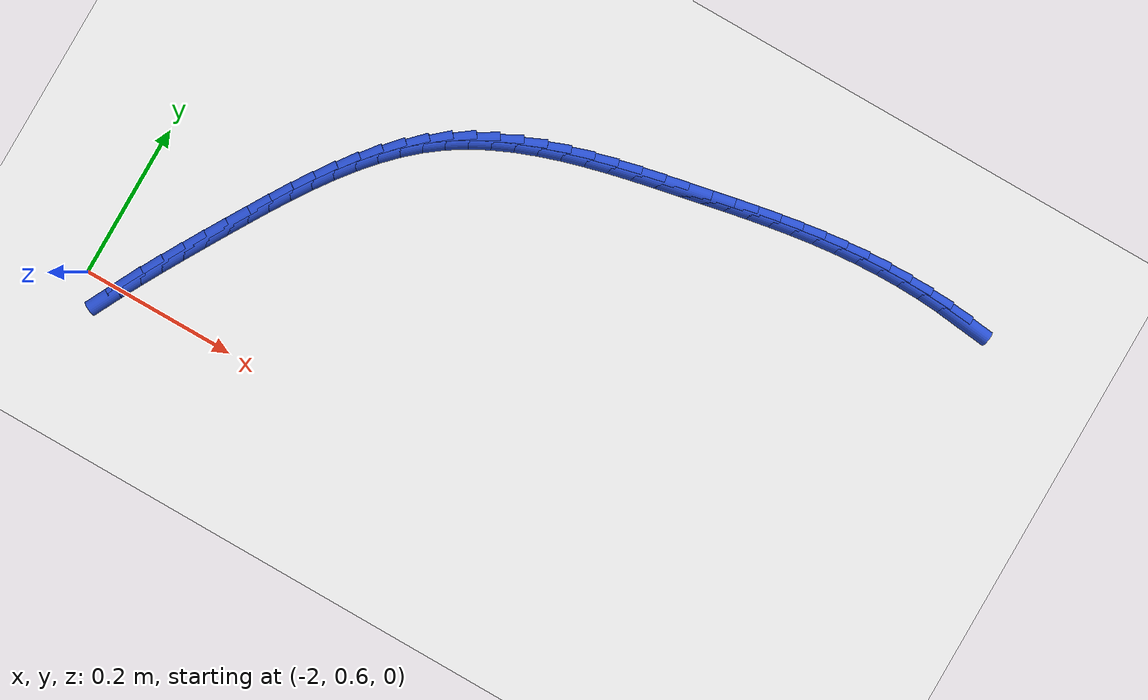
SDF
<sdf version="1.6">
 <world name="default">
  <model name="ground_plane">
   <static>1</static>
   <link name="link">
    <collision name="collision">
     <geometry><plane><normal>0 0 1</normal><size>100 100</size></plane></geometry>
     <surface><friction><ode><mu>100</mu><mu2>50</mu2></ode></friction></surface>
    </collision>
    <visual name="visual">
     <cast_shadows>0</cast_shadows>
     <geometry><plane><normal>0 0 1</normal><size>100 100</size></plane></geometry>
     <material>
      <script><uri>file://media/materials/scripts/gazebo.material</uri><name>Gazebo/WhiteGlow</name></script>
     </material>
    </visual>
   </link>
  </model>
  <model name="line">
   <link name="link_57">
    <pose>-1.0494521160689276 1.0819657733163826 0.01 0 1.57 -0.1118482912921753</pose>
    <collision name="collision">
     <geometry><cylinder><radius>0.01</radius><length>0.08</length></cylinder></geometry>
    </collision>
    <visual name="visual">
     <material>
      <script><name>Gazebo/Blue</name><uri>file://media/materials/scripts/gazebo.material</uri></script>
     </material>
     <geometry><cylinder><radius>0.01</radius><length>0.08</length></cylinder></geometry>
    </visual>
   </link>
   <link name="link_58">
    <pose>-1.0786361252321695 1.0852436350149781 0.01 0 1.57 -0.06854868838956527</pose>
    <collision name="collision">
     <geometry><cylinder><radius>0.01</radius><length>0.08</length></cylinder></geometry>
    </collision>
    <visual name="visual">
     <material>
      <script><name>Gazebo/Blue</name><uri>file://media/materials/scripts/gazebo.material</uri></script>
     </material>
     <geometry><cylinder><radius>0.01</radius><length>0.08</length></cylinder></geometry>
    </visual>
   </link>
   <link name="link_59">
    <pose>-1.1079737981077338 1.0872578498797152 0.01 0 1.57 -0.027786375727203612</pose>
    <collision name="collision">
     <geometry><cylinder><radius>0.01</radius><length>0.08</length></cylinder></geometry>
    </collision>
    <visual name="visual">
     <material>
      <script><name>Gazebo/Blue</name><uri>file://media/materials/scripts/gazebo.material</uri></script>
     </material>
     <geometry><cylinder><radius>0.01</radius><length>0.08</length></cylinder></geometry>
    </visual>
   </link>
   <link name="link_60">
    <pose>-1.1373636886971998 1.0880746986579672 0.01 0 1.57 0.010709524680330476</pose>
    <collision name="collision">
     <geometry><cylinder><radius>0.01</radius><length>0.08</length></cylinder></geometry>
    </collision>
    <visual name="visual">
     <material>
      <script><name>Gazebo/Blue</name><uri>file://media/materials/scripts/gazebo.material</uri></script>
     </material>
     <geometry><cylinder><radius>0.01</radius><length>0.08</length></cylinder></geometry>
    </visual>
   </link>
   <link name="link_61">
    <pose>-1.1667043510021489 1.087760462097109 0.01 0 1.57 0.047208533782803604</pose>
    <collision name="collision">
     <geometry><cylinder><radius>0.01</radius><length>0.08</length></cylinder></geometry>
    </collision>
    <visual name="visual">
     <material>
      <script><name>Gazebo/Blue</name><uri>file://media/materials/scripts/gazebo.material</uri></script>
     </material>
     <geometry><cylinder><radius>0.01</radius><length>0.08</length></cylinder></geometry>
    </visual>
   </link>
   <link name="link_62">
    <pose>-1.1958943390241608 1.0863814209445146 0.01 0 1.57 0.08170957465477997</pose>
    <collision name="collision">
     <geometry><cylinder><radius>0.01</radius><length>0.08</length></cylinder></geometry>
    </collision>
    <visual name="visual">
     <material>
      <script><name>Gazebo/Blue</name><uri>file://media/materials/scripts/gazebo.material</uri></script>
     </material>
     <geometry><cylinder><radius>0.01</radius><length>0.08</length></cylinder></geometry>
    </visual>
   </link>
   <link name="link_63">
    <pose>-1.224850785462752 1.0840101223830483 0.01 0 1.57 0.11268024942012114</pose>
    <collision name="collision">
     <geometry><cylinder><radius>0.01</radius><length>0.08</length></cylinder></geometry>
    </collision>
    <visual name="visual">
     <material>
      <script><name>Gazebo/Blue</name><uri>file://media/materials/scripts/gazebo.material</uri></script>
     </material>
     <geometry><cylinder><radius>0.01</radius><length>0.08</length></cylinder></geometry>
    </visual>
   </link>
   <link name="link_64">
    <pose>-1.2536020764411715 1.0807566384213396 0.01 0 1.57 0.1392839832924681</pose>
    <collision name="collision">
     <geometry><cylinder><radius>0.01</radius><length>0.08</length></cylinder></geometry>
    </collision>
    <visual name="visual">
     <material>
      <script><name>Gazebo/Blue</name><uri>file://media/materials/scripts/gazebo.material</uri></script>
     </material>
     <geometry><cylinder><radius>0.01</radius><length>0.08</length></cylinder></geometry>
    </visual>
   </link>
   <link name="link_65">
    <pose>-1.2822178260492196 1.0767449469075832 0.01 0 1.57 0.16131512518770366</pose>
    <collision name="collision">
     <geometry><cylinder><radius>0.01</radius><length>0.08</length></cylinder></geometry>
    </collision>
    <visual name="visual">
     <material>
      <script><name>Gazebo/Blue</name><uri>file://media/materials/scripts/gazebo.material</uri></script>
     </material>
     <geometry><cylinder><radius>0.01</radius><length>0.08</length></cylinder></geometry>
    </visual>
   </link>
   <link name="link_66">
    <pose>-1.3107677156888409 1.0720990483937807 0.01 0 1.57 0.1786504673311753</pose>
    <collision name="collision">
     <geometry><cylinder><radius>0.01</radius><length>0.08</length></cylinder></geometry>
    </collision>
    <visual name="visual">
     <material>
      <script><name>Gazebo/Blue</name><uri>file://media/materials/scripts/gazebo.material</uri></script>
     </material>
     <geometry><cylinder><radius>0.01</radius><length>0.08</length></cylinder></geometry>
    </visual>
   </link>
   <link name="link_67">
    <pose>-1.3393214267619808 1.0669429434319362 0.01 0 1.57 0.19123697754447946</pose>
    <collision name="collision">
     <geometry><cylinder><radius>0.01</radius><length>0.08</length></cylinder></geometry>
    </collision>
    <visual name="visual">
     <material>
      <script><name>Gazebo/Blue</name><uri>file://media/materials/scripts/gazebo.material</uri></script>
     </material>
     <geometry><cylinder><radius>0.01</radius><length>0.08</length></cylinder></geometry>
    </visual>
   </link>
   <link name="link_68">
    <pose>-1.3679486406705839 1.0614006325740521 0.01 0 1.57 0.19908063609595766</pose>
    <collision name="collision">
     <geometry><cylinder><radius>0.01</radius><length>0.08</length></cylinder></geometry>
    </collision>
    <visual name="visual">
     <material>
      <script><name>Gazebo/Blue</name><uri>file://media/materials/scripts/gazebo.material</uri></script>
     </material>
     <geometry><cylinder><radius>0.01</radius><length>0.08</length></cylinder></geometry>
    </visual>
   </link>
   <link name="link_69">
    <pose>-1.3967190388165946 1.0555961163721317 0.01 0 1.57 0.20225039987977708</pose>
    <collision name="collision">
     <geometry><cylinder><radius>0.01</radius><length>0.08</length></cylinder></geometry>
    </collision>
    <visual name="visual">
     <material>
      <script><name>Gazebo/Blue</name><uri>file://media/materials/scripts/gazebo.material</uri></script>
     </material>
     <geometry><cylinder><radius>0.01</radius><length>0.08</length></cylinder></geometry>
    </visual>
   </link>
   <link name="link_70">
    <pose>-1.4257020323311904 1.049653038182516 0.01 0 1.57 0.20409639836431703</pose>
    <collision name="collision">
     <geometry><cylinder><radius>0.01</radius><length>0.08</length></cylinder></geometry>
    </collision>
    <visual name="visual">
     <material>
      <script><name>Gazebo/Blue</name><uri>file://media/materials/scripts/gazebo.material</uri></script>
     </material>
     <geometry><cylinder><radius>0.01</radius><length>0.08</length></cylinder></geometry>
    </visual>
   </link>
   <link name="link_71">
    <pose>-1.4549021206749815 1.0436092527012355 0.01 0 1.57 0.2120882974977242</pose>
    <collision name="collision">
     <geometry><cylinder><radius>0.01</radius><length>0.08</length></cylinder></geometry>
    </collision>
    <visual name="visual">
     <material>
      <script><name>Gazebo/Blue</name><uri>file://media/materials/scripts/gazebo.material</uri></script>
     </material>
     <geometry><cylinder><radius>0.01</radius><length>0.08</length></cylinder></geometry>
    </visual>
   </link>
   <link name="link_72">
    <pose>-1.484175045874034 1.0373060135985033 0.01 0 1.57 0.22728179407487384</pose>
    <collision name="collision">
     <geometry><cylinder><radius>0.01</radius><length>0.08</length></cylinder></geometry>
    </collision>
    <visual name="visual">
     <material>
      <script><name>Gazebo/Blue</name><uri>file://media/materials/scripts/gazebo.material</uri></script>
     </material>
     <geometry><cylinder><radius>0.01</radius><length>0.08</length></cylinder></geometry>
    </visual>
   </link>
   <link name="link_73">
    <pose>-1.5133557984365718 1.030557148892111 0.01 0 1.57 0.24984621767397297</pose>
    <collision name="collision">
     <geometry><cylinder><radius>0.01</radius><length>0.08</length></cylinder></geometry>
    </collision>
    <visual name="visual">
     <material>
      <script><name>Gazebo/Blue</name><uri>file://media/materials/scripts/gazebo.material</uri></script>
     </material>
     <geometry><cylinder><radius>0.01</radius><length>0.08</length></cylinder></geometry>
    </visual>
   </link>
   <link name="link_74">
    <pose>-1.54227936887082 1.0231764865998505 0.01 0 1.57 0.28009517804462747</pose>
    <collision name="collision">
     <geometry><cylinder><radius>0.01</radius><length>0.08</length></cylinder></geometry>
    </collision>
    <visual name="visual">
     <material>
      <script><name>Gazebo/Blue</name><uri>file://media/materials/scripts/gazebo.material</uri></script>
     </material>
     <geometry><cylinder><radius>0.01</radius><length>0.08</length></cylinder></geometry>
    </visual>
   </link>
   <link name="link_75">
    <pose>-1.5707807476850024 1.0149778547395132 0.01 0 1.57 0.3184598409877497</pose>
    <collision name="collision">
     <geometry><cylinder><radius>0.01</radius><length>0.08</length></cylinder></geometry>
    </collision>
    <visual name="visual">
     <material>
      <script><name>Gazebo/Blue</name><uri>file://media/materials/scripts/gazebo.material</uri></script>
     </material>
     <geometry><cylinder><radius>0.01</radius><length>0.08</length></cylinder></geometry>
    </visual>
   </link>
   <link name="link_76">
    <pose>-1.5986949253873435 1.005775081328891 0.01 0 1.57 0.36544647114574463</pose>
    <collision name="collision">
     <geometry><cylinder><radius>0.01</radius><length>0.08</length></cylinder></geometry>
    </collision>
    <visual name="visual">
     <material>
      <script><name>Gazebo/Blue</name><uri>file://media/materials/scripts/gazebo.material</uri></script>
     </material>
     <geometry><cylinder><radius>0.01</radius><length>0.08</length></cylinder></geometry>
    </visual>
   </link>
   <link name="link_77">
    <pose>-1.6258568924860675 0.9953819943857752 0.01 0 1.57 0.42156786668374135</pose>
    <collision name="collision">
     <geometry><cylinder><radius>0.01</radius><length>0.08</length></cylinder></geometry>
    </collision>
    <visual name="visual">
     <material>
      <script><name>Gazebo/Blue</name><uri>file://media/materials/scripts/gazebo.material</uri></script>
     </material>
     <geometry><cylinder><radius>0.01</radius><length>0.08</length></cylinder></geometry>
    </visual>
   </link>
   <link name="link_78">
    <pose>-1.6521016394893986 0.9836124219279577 0.01 0 1.57 0.48723743629992217</pose>
    <collision name="collision">
     <geometry><cylinder><radius>0.01</radius><length>0.08</length></cylinder></geometry>
    </collision>
    <visual name="visual">
     <material>
      <script><name>Gazebo/Blue</name><uri>file://media/materials/scripts/gazebo.material</uri></script>
     </material>
     <geometry><cylinder><radius>0.01</radius><length>0.08</length></cylinder></geometry>
    </visual>
   </link>
   <link name="link_79">
    <pose>-1.677264156905562 0.9702801919732298 0.01 0 1.57 0.5626186906064433</pose>
    <collision name="collision">
     <geometry><cylinder><radius>0.01</radius><length>0.08</length></cylinder></geometry>
    </collision>
    <visual name="visual">
     <material>
      <script><name>Gazebo/Blue</name><uri>file://media/materials/scripts/gazebo.material</uri></script>
     </material>
     <geometry><cylinder><radius>0.01</radius><length>0.08</length></cylinder></geometry>
    </visual>
   </link>
   <link name="link_80">
    <pose>-1.7011794352427811 0.9551991325393837 0.01 0 1.57 0.6462365374783721</pose>
    <collision name="collision">
     <geometry><cylinder><radius>0.01</radius><length>0.08</length></cylinder></geometry>
    </collision>
    <visual name="visual">
     <material>
      <script><name>Gazebo/Blue</name><uri>file://media/materials/scripts/gazebo.material</uri></script>
     </material>
     <geometry><cylinder><radius>0.01</radius><length>0.08</length></cylinder></geometry>
    </visual>
   </link>
   <link name="link_81">
    <pose>-1.7237030596637308 0.9382099476870462 0.01 0 1.57 0.7265328022150184</pose>
    <collision name="collision">
     <geometry><cylinder><radius>0.01</radius><length>0.08</length></cylinder></geometry>
    </collision>
    <visual name="visual">
     <material>
      <script><name>Gazebo/Blue</name><uri>file://media/materials/scripts/gazebo.material</uri></script>
     </material>
     <geometry><cylinder><radius>0.01</radius><length>0.08</length></cylinder></geometry>
    </visual>
   </link>
   <link name="link_82">
    <pose>-1.7448752884058611 0.9193943400078116 0.01 0 1.57 0.7971487204633396</pose>
    <collision name="collision">
     <geometry><cylinder><radius>0.01</radius><length>0.08</length></cylinder></geometry>
    </collision>
    <visual name="visual">
     <material>
      <script><name>Gazebo/Blue</name><uri>file://media/materials/scripts/gazebo.material</uri></script>
     </material>
     <geometry><cylinder><radius>0.01</radius><length>0.08</length></cylinder></geometry>
    </visual>
   </link>
   <link name="link_83">
    <pose>-1.7648338155804875 0.8989611659975081 0.01 0 1.57 0.857889771509862</pose>
    <collision name="collision">
     <geometry><cylinder><radius>0.01</radius><length>0.08</length></cylinder></geometry>
    </collision>
    <visual name="visual">
     <material>
      <script><name>Gazebo/Blue</name><uri>file://media/materials/scripts/gazebo.material</uri></script>
     </material>
     <geometry><cylinder><radius>0.01</radius><length>0.08</length></cylinder></geometry>
    </visual>
   </link>
   <link name="link_84">
    <pose>-1.783717213352504 0.877120428012689 0.01 0 1.57 0.908991931478706</pose>
    <collision name="collision">
     <geometry><cylinder><radius>0.01</radius><length>0.08</length></cylinder></geometry>
    </collision>
    <visual name="visual">
     <material>
      <script><name>Gazebo/Blue</name><uri>file://media/materials/scripts/gazebo.material</uri></script>
     </material>
     <geometry><cylinder><radius>0.01</radius><length>0.08</length></cylinder></geometry>
    </visual>
   </link>
   <link name="link_85">
    <pose>-1.8016640538868087 0.8540821284099069 0.01 0 1.57 0.950890666696185</pose>
    <collision name="collision">
     <geometry><cylinder><radius>0.01</radius><length>0.08</length></cylinder></geometry>
    </collision>
    <visual name="visual">
     <material>
      <script><name>Gazebo/Blue</name><uri>file://media/materials/scripts/gazebo.material</uri></script>
     </material>
     <geometry><cylinder><radius>0.01</radius><length>0.08</length></cylinder></geometry>
    </visual>
   </link>
   <link name="link_86">
    <pose>-1.8188129093482956 0.830056269545715 0.01 0 1.57 0.9840834608351404</pose>
    <collision name="collision">
     <geometry><cylinder><radius>0.01</radius><length>0.08</length></cylinder></geometry>
    </collision>
    <visual name="visual">
     <material>
      <script><name>Gazebo/Blue</name><uri>file://media/materials/scripts/gazebo.material</uri></script>
     </material>
     <geometry><cylinder><radius>0.01</radius><length>0.08</length></cylinder></geometry>
    </visual>
   </link>
   <link name="link_87">
    <pose>-1.8353023519018627 0.8052528537766673 0.01 0 1.57 1.0090360288794324</pose>
    <collision name="collision">
     <geometry><cylinder><radius>0.01</radius><length>0.08</length></cylinder></geometry>
    </collision>
    <visual name="visual">
     <material>
      <script><name>Gazebo/Blue</name><uri>file://media/materials/scripts/gazebo.material</uri></script>
     </material>
     <geometry><cylinder><radius>0.01</radius><length>0.08</length></cylinder></geometry>
    </visual>
   </link>
   <link name="link_88">
    <pose>-1.8512709537124055 0.779881883459316 0.01 0 1.57 1.0261231932457995</pose>
    <collision name="collision">
     <geometry><cylinder><radius>0.01</radius><length>0.08</length></cylinder></geometry>
    </collision>
    <visual name="visual">
     <material>
      <script><name>Gazebo/Blue</name><uri>file://media/materials/scripts/gazebo.material</uri></script>
     </material>
     <geometry><cylinder><radius>0.01</radius><length>0.08</length></cylinder></geometry>
    </visual>
   </link>
   <link name="link_89">
    <pose>-1.8668572869448194 0.7541533609502145 0.01 0 1.57 1.0355934250239995</pose>
    <collision name="collision">
     <geometry><cylinder><radius>0.01</radius><length>0.08</length></cylinder></geometry>
    </collision>
    <visual name="visual">
     <material>
      <script><name>Gazebo/Blue</name><uri>file://media/materials/scripts/gazebo.material</uri></script>
     </material>
     <geometry><cylinder><radius>0.01</radius><length>0.08</length></cylinder></geometry>
    </visual>
   </link>
   <link name="link_90">
    <pose>-1.8821999225502963 0.7282772873263528 0.01 0 1.57 1.0394956941263556</pose>
    <collision name="collision">
     <geometry><cylinder><radius>0.01</radius><length>0.08</length></cylinder></geometry>
    </collision>
    <visual name="visual">
     <material>
      <script><name>Gazebo/Blue</name><uri>file://media/materials/scripts/gazebo.material</uri></script>
     </material>
     <geometry><cylinder><radius>0.01</radius><length>0.08</length></cylinder></geometry>
    </visual>
   </link>
   <link name="link_91">
    <pose>-1.8973956092796758 0.7024195721187517 0.01 0 1.57 1.0449305170318683</pose>
    <collision name="collision">
     <geometry><cylinder><radius>0.01</radius><length>0.08</length></cylinder></geometry>
    </collision>
    <visual name="visual">
     <material>
      <script><name>Gazebo/Blue</name><uri>file://media/materials/scripts/gazebo.material</uri></script>
     </material>
     <geometry><cylinder><radius>0.01</radius><length>0.08</length></cylinder></geometry>
    </visual>
   </link>
   <link name="link_92">
    <pose>-1.9123889683830682 0.676585742653872 0.01 0 1.57 1.0535525621790696</pose>
    <collision name="collision">
     <geometry><cylinder><radius>0.01</radius><length>0.08</length></cylinder></geometry>
    </collision>
    <visual name="visual">
     <material>
      <script><name>Gazebo/Blue</name><uri>file://media/materials/scripts/gazebo.material</uri></script>
     </material>
     <geometry><cylinder><radius>0.01</radius><length>0.08</length></cylinder></geometry>
    </visual>
   </link>
   <link name="link_93">
    <pose>-1.9270900416886432 0.65074487049642 0.01 0 1.57 1.0654211243568747</pose>
    <collision name="collision">
     <geometry><cylinder><radius>0.01</radius><length>0.08</length></cylinder></geometry>
    </collision>
    <visual name="visual">
     <material>
      <script><name>Gazebo/Blue</name><uri>file://media/materials/scripts/gazebo.material</uri></script>
     </material>
     <geometry><cylinder><radius>0.01</radius><length>0.08</length></cylinder></geometry>
    </visual>
   </link>
   <link name="link_94">
    <pose>-1.9414088710245716 0.6248660272111016 0.01 0 1.57 1.080604065194326</pose>
    <collision name="collision">
     <geometry><cylinder><radius>0.01</radius><length>0.08</length></cylinder></geometry>
    </collision>
    <visual name="visual">
     <material>
      <script><name>Gazebo/Blue</name><uri>file://media/materials/scripts/gazebo.material</uri></script>
     </material>
     <geometry><cylinder><radius>0.01</radius><length>0.08</length></cylinder></geometry>
    </visual>
   </link>
   <link name="link_95">
    <pose>-1.9552554982190231 0.5989182843626237 0.01 0 1.57 1.0991744904192882</pose>
    <collision name="collision">
     <geometry><cylinder><radius>0.01</radius><length>0.08</length></cylinder></geometry>
    </collision>
    <visual name="visual">
     <material>
      <script><name>Gazebo/Blue</name><uri>file://media/materials/scripts/gazebo.material</uri></script>
     </material>
     <geometry><cylinder><radius>0.01</radius><length>0.08</length></cylinder></geometry>
    </visual>
   </link>
  </model>
 </world>
</sdf>
